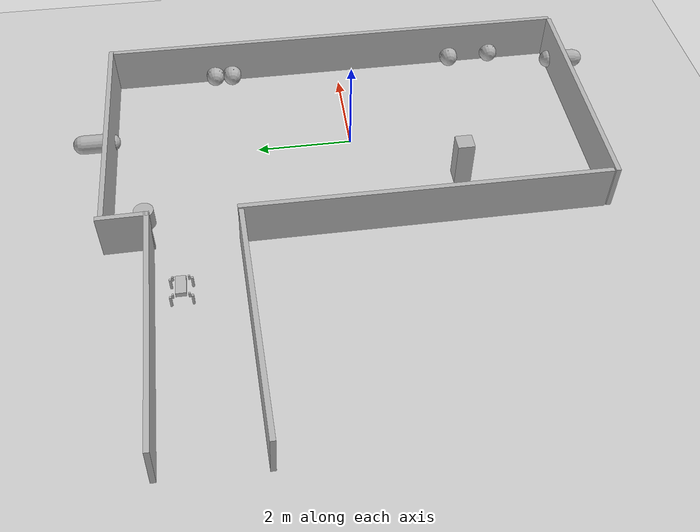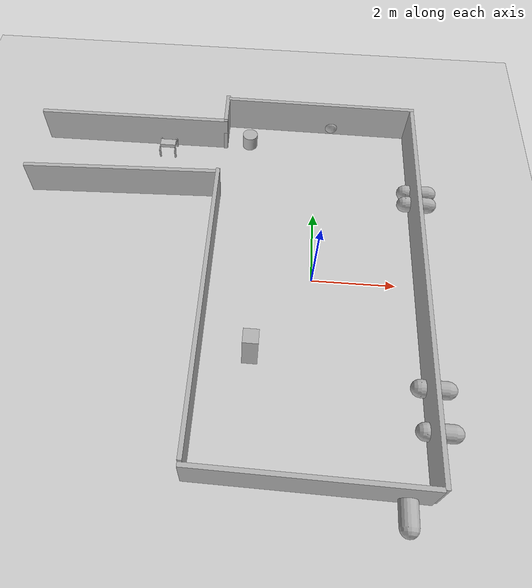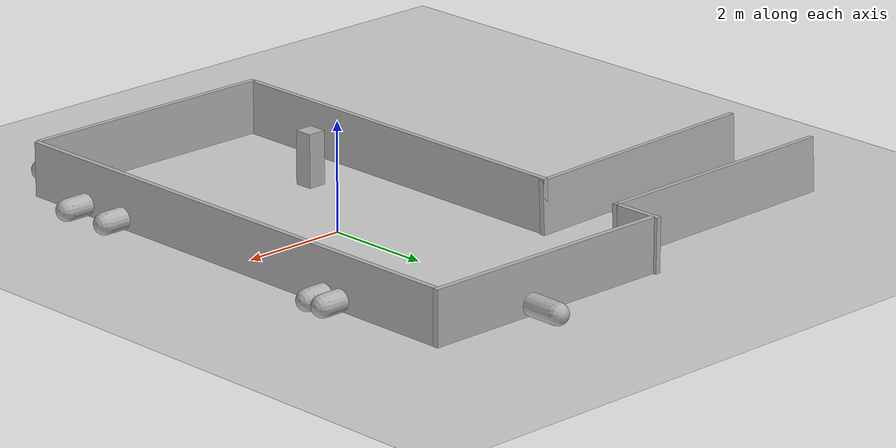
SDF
<?xml version="1.0" ?>
<sdf version='1.9'>
  <world name='quadruped_world'>
    <physics name='1ms' type='ignored'>
      <max_step_size>0.001</max_step_size>
      <real_time_factor>1</real_time_factor>
      <dart>
        <solver>
          <solver_type>pgs</solver_type>
        </solver>
      </dart>
      <real_time_update_rate>1000</real_time_update_rate>
    </physics>
    <plugin name='ignition::sim::systems::Physics' filename='ignition-gazebo-physics-system'/>
    <plugin name='ignition::sim::systems::UserCommands' filename='ignition-gazebo-user-commands-system'/>
    <plugin name='ignition::sim::systems::SceneBroadcaster' filename='ignition-gazebo-scene-broadcaster-system'/>
    <plugin name='ignition::sim::systems::Contact' filename='ignition-gazebo-contact-system'/>
    <gravity>0 0 -9.8</gravity>
    <magnetic_field>6e-06 2.3e-05 -4.2e-05</magnetic_field>
    <atmosphere type='adiabatic'/>
    <scene>
      <ambient>0.4 0.4 0.4 1</ambient>
      <background>0.7 0.7 0.7 1</background>
      <shadows>true</shadows>
    </scene>
    <model name='ground_plane'>
      <static>true</static>
      <link name='link'>
        <collision name='collision'>
          <geometry>
            <plane>
              <normal>0 0 1</normal>
              <size>100 100</size>
            </plane>
          </geometry>
          <surface>
            <friction>
              <ode>
                <mu>100</mu>
                <mu2>100</mu2>
              </ode>
            </friction>
            <bounce/>
            <contact/>
          </surface>
        </collision>
        <visual name='visual'>
          <geometry>
            <plane>
              <normal>0 0 1</normal>
              <size>100 100</size>
            </plane>
          </geometry>
          <material>
            <ambient>0.8 0.8 0.8 1</ambient>
            <diffuse>0.8 0.8 0.8 1</diffuse>
            <specular>0.8 0.8 0.8 1</specular>
          </material>
        </visual>
        <pose>0 0 0 0 -0 0</pose>
        <inertial>
          <pose>0 0 0 0 -0 0</pose>
          <mass>1</mass>
          <inertia>
            <ixx>1</ixx>
            <ixy>0</ixy>
            <ixz>0</ixz>
            <iyy>1</iyy>
            <iyz>0</iyz>
            <izz>1</izz>
          </inertia>
        </inertial>
        <enable_wind>false</enable_wind>
      </link>
      <pose>0 0 0 0 -0 0</pose>
      <self_collide>false</self_collide>
    </model>
    <model name='chai_back_wall'>
      <static>true</static>
      <pose>2.5 0 0.5 0 -0 0</pose>
      <link name='link'>
        <collision name='collision'>
          <geometry>
            <box>
              <size>0.1 10 1</size>
            </box>
          </geometry>
          <surface>
            <friction>
              <ode/>
            </friction>
            <bounce/>
            <contact/>
          </surface>
        </collision>
        <visual name='visual'>
          <geometry>
            <box>
              <size>0.1 10 1</size>
            </box>
          </geometry>
          <material>
            <ambient>0.7 0.7 0.7 1</ambient>
            <diffuse>0.7 0.7 0.7 1</diffuse>
            <specular>0.01 0.01 0.01 1</specular>
          </material>
        </visual>
        <pose>0 0 0 0 -0 0</pose>
        <inertial>
          <pose>0 0 0 0 -0 0</pose>
          <mass>1</mass>
          <inertia>
            <ixx>1</ixx>
            <ixy>0</ixy>
            <ixz>0</ixz>
            <iyy>1</iyy>
            <iyz>0</iyz>
            <izz>1</izz>
          </inertia>
        </inertial>
        <enable_wind>false</enable_wind>
      </link>
      <self_collide>false</self_collide>
    </model>
    <model name='chai_front_wall'>
      <static>true</static>
      <pose>-2.5 -1.17552 0.5 0 -0 0</pose>
      <link name='link'>
        <collision name='collision'>
          <geometry>
            <box>
              <size>0.1 7.4 1</size>
            </box>
          </geometry>
          <surface>
            <friction>
              <ode/>
            </friction>
            <bounce/>
            <contact/>
          </surface>
        </collision>
        <visual name='visual'>
          <geometry>
            <box>
              <size>0.1 7.4 1</size>
            </box>
          </geometry>
          <material>
            <ambient>0.7 0.7 0.7 1</ambient>
            <diffuse>0.7 0.7 0.7 1</diffuse>
            <specular>0.01 0.01 0.01 1</specular>
          </material>
        </visual>
        <pose>0 0 0 0 -0 0</pose>
        <inertial>
          <pose>0 0 0 0 -0 0</pose>
          <mass>1</mass>
          <inertia>
            <ixx>1</ixx>
            <ixy>0</ixy>
            <ixz>0</ixz>
            <iyy>1</iyy>
            <iyz>0</iyz>
            <izz>1</izz>
          </inertia>
        </inertial>
        <enable_wind>false</enable_wind>
      </link>
      <self_collide>false</self_collide>
    </model>
    <model name='chai_enterance_wall'>
      <static>true</static>
      <pose>-4.94552 2.38656 0.468097 0.001853 -0.043091 1.60937</pose>
      <link name='link'>
        <collision name='collision'>
          <geometry>
            <box>
              <size>0.1 5 1</size>
            </box>
          </geometry>
          <surface>
            <friction>
              <ode/>
            </friction>
            <bounce/>
            <contact/>
          </surface>
        </collision>
        <visual name='visual'>
          <geometry>
            <box>
              <size>0.1 5 1</size>
            </box>
          </geometry>
          <material>
            <ambient>0.7 0.7 0.7 1</ambient>
            <diffuse>0.7 0.7 0.7 1</diffuse>
            <specular>0.01 0.01 0.01 1</specular>
          </material>
        </visual>
        <pose>0 0 0 0 -0 0</pose>
        <inertial>
          <pose>0 0 0 0 -0 0</pose>
          <mass>1</mass>
          <inertia>
            <ixx>1</ixx>
            <ixy>0</ixy>
            <ixz>0</ixz>
            <iyy>1</iyy>
            <iyz>0</iyz>
            <izz>1</izz>
          </inertia>
        </inertial>
        <enable_wind>false</enable_wind>
      </link>
      <self_collide>false</self_collide>
    </model>
    <model name='quadruped'>
      <link name='base_link'>
        <inertial>
          <pose>0 0 0 0 0 0</pose>
          <mass>5</mass>
          <inertia><ixx>0.1</ixx><ixy>0</ixy><ixz>0</ixz><iyy>0.1</iyy><iyz>0</iyz><izz>0.1</izz></inertia>
        </inertial>
        <collision name='base_link_collision'>
          <geometry><box><size>0.4 0.2 0.1</size></box></geometry>
        </collision>
        <visual name='base_link_visual'>
          <geometry><box><size>0.4 0.2 0.1</size></box></geometry>
        </visual>
      </link>

      <!-- FL HIP -->
      <link name='FL_hip'>
        <pose>0.2 0.1 -0.02 0 0 0</pose>
        <inertial><pose>0 0.05 0 0 0 0</pose><mass>0.2</mass><inertia><ixx>0.005</ixx><ixy>0</ixy><ixz>0</ixz><iyy>0.005</iyy><iyz>0</iyz><izz>0.005</izz></inertia></inertial>
        <collision name='FL_hip_collision'><pose>0 0.05 0 0 0 0</pose><geometry><cylinder><radius>0.02</radius><length>0.1</length></cylinder></geometry><surface><friction><ode><mu>1.0</mu><mu2>1.0</mu2></ode></friction><bounce/><contact/></surface></collision>
        <visual name='FL_hip_visual'><pose>0 0.05 0 0 0 0</pose><geometry><cylinder><radius>0.02</radius><length>0.1</length></cylinder></geometry></visual>
      </link>
      <joint name='FL_hip_joint' type='revolute'>
        <parent>base_link</parent><child>FL_hip</child>
        <pose>0 0 0 0 0 0</pose>
        <axis><xyz>1 0 0</xyz><limit><lower>-0.3</lower><upper>0.3</upper><effort>1000</effort><velocity>10</velocity></limit><dynamics><damping>2.0</damping></dynamics></axis>
      </joint>

      <!-- FL KNEE -->
      <link name='FL_leg'>
        <pose>0.2 0.2 -0.04 0 0 0</pose>
        <inertial><pose>0 0 -0.125 0 0 0</pose><mass>0.5</mass><inertia><ixx>0.01</ixx><ixy>0</ixy><ixz>0</ixz><iyy>0.01</iyy><iyz>0</iyz><izz>0.01</izz></inertia></inertial>
        <collision name='FL_leg_collision'><pose>0 0 -0.125 0 0 0</pose><geometry><cylinder><radius>0.025</radius><length>0.25</length></cylinder></geometry><surface><friction><ode><mu>1.0</mu><mu2>1.0</mu2></ode></friction><bounce/><contact/></surface></collision>
        <visual name='FL_leg_visual'><pose>0 0 -0.125 0 0 0</pose><geometry><cylinder><radius>0.025</radius><length>0.25</length></cylinder></geometry></visual>
      </link>
      <joint name='FL_joint' type='revolute'>
        <parent>FL_hip</parent><child>FL_leg</child>
        <pose>0 0 0 0 0 0</pose>
        <axis><xyz>0 1 0</xyz><limit><lower>-1.57</lower><upper>1.57</upper><effort>1000</effort><velocity>10</velocity></limit><dynamics><damping>2.0</damping></dynamics></axis>
      </joint>

      <!-- FR HIP -->
      <link name='FR_hip'>
        <pose>0.2 -0.1 -0.02 0 0 0</pose>
        <inertial><pose>0 -0.05 0 0 0 0</pose><mass>0.2</mass><inertia><ixx>0.005</ixx><ixy>0</ixy><ixz>0</ixz><iyy>0.005</iyy><iyz>0</iyz><izz>0.005</izz></inertia></inertial>
        <collision name='FR_hip_collision'><pose>0 -0.05 0 0 0 0</pose><geometry><cylinder><radius>0.02</radius><length>0.1</length></cylinder></geometry><surface><friction><ode><mu>1.0</mu><mu2>1.0</mu2></ode></friction><bounce/><contact/></surface></collision>
        <visual name='FR_hip_visual'><pose>0 -0.05 0 0 0 0</pose><geometry><cylinder><radius>0.02</radius><length>0.1</length></cylinder></geometry></visual>
      </link>
      <joint name='FR_hip_joint' type='revolute'>
        <parent>base_link</parent><child>FR_hip</child>
        <pose>0 0 0 0 0 0</pose>
        <axis><xyz>1 0 0</xyz><limit><lower>-0.3</lower><upper>0.3</upper><effort>1000</effort><velocity>10</velocity></limit><dynamics><damping>2.0</damping></dynamics></axis>
      </joint>

      <!-- FR KNEE -->
      <link name='FR_leg'>
        <pose>0.2 -0.2 -0.04 0 0 0</pose>
        <inertial><pose>0 0 -0.125 0 0 0</pose><mass>0.5</mass><inertia><ixx>0.01</ixx><ixy>0</ixy><ixz>0</ixz><iyy>0.01</iyy><iyz>0</iyz><izz>0.01</izz></inertia></inertial>
        <collision name='FR_leg_collision'><pose>0 0 -0.125 0 0 0</pose><geometry><cylinder><radius>0.025</radius><length>0.25</length></cylinder></geometry><surface><friction><ode><mu>1.0</mu><mu2>1.0</mu2></ode></friction><bounce/><contact/></surface></collision>
        <visual name='FR_leg_visual'><pose>0 0 -0.125 0 0 0</pose><geometry><cylinder><radius>0.025</radius><length>0.25</length></cylinder></geometry></visual>
      </link>
      <joint name='FR_joint' type='revolute'>
        <parent>FR_hip</parent><child>FR_leg</child>
        <pose>0 0 0 0 0 0</pose>
        <axis><xyz>0 1 0</xyz><limit><lower>-1.57</lower><upper>1.57</upper><effort>1000</effort><velocity>10</velocity></limit><dynamics><damping>2.0</damping></dynamics></axis>
      </joint>

      <!-- BL HIP -->
      <link name='BL_hip'>
        <pose>-0.2 0.1 -0.02 0 0 0</pose>
        <inertial><pose>0 0.05 0 0 0 0</pose><mass>0.2</mass><inertia><ixx>0.005</ixx><ixy>0</ixy><ixz>0</ixz><iyy>0.005</iyy><iyz>0</iyz><izz>0.005</izz></inertia></inertial>
        <collision name='BL_hip_collision'><pose>0 0.05 0 0 0 0</pose><geometry><cylinder><radius>0.02</radius><length>0.1</length></cylinder></geometry><surface><friction><ode><mu>1.0</mu><mu2>1.0</mu2></ode></friction><bounce/><contact/></surface></collision>
        <visual name='BL_hip_visual'><pose>0 0.05 0 0 0 0</pose><geometry><cylinder><radius>0.02</radius><length>0.1</length></cylinder></geometry></visual>
      </link>
      <joint name='BL_hip_joint' type='revolute'>
        <parent>base_link</parent><child>BL_hip</child>
        <pose>0 0 0 0 0 0</pose>
        <axis><xyz>1 0 0</xyz><limit><lower>-0.3</lower><upper>0.3</upper><effort>1000</effort><velocity>10</velocity></limit><dynamics><damping>2.0</damping></dynamics></axis>
      </joint>

      <!-- BL KNEE -->
      <link name='BL_leg'>
        <pose>-0.2 0.2 -0.04 0 0 0</pose>
        <inertial><pose>0 0 -0.125 0 0 0</pose><mass>0.5</mass><inertia><ixx>0.01</ixx><ixy>0</ixy><ixz>0</ixz><iyy>0.01</iyy><iyz>0</iyz><izz>0.01</izz></inertia></inertial>
        <collision name='BL_leg_collision'><pose>0 0 -0.125 0 0 0</pose><geometry><cylinder><radius>0.025</radius><length>0.25</length></cylinder></geometry><surface><friction><ode><mu>1.0</mu><mu2>1.0</mu2></ode></friction><bounce/><contact/></surface></collision>
        <visual name='BL_leg_visual'><pose>0 0 -0.125 0 0 0</pose><geometry><cylinder><radius>0.025</radius><length>0.25</length></cylinder></geometry></visual>
      </link>
      <joint name='BL_joint' type='revolute'>
        <parent>BL_hip</parent><child>BL_leg</child>
        <pose>0 0 0 0 0 0</pose>
        <axis><xyz>0 1 0</xyz><limit><lower>-1.57</lower><upper>1.57</upper><effort>1000</effort><velocity>10</velocity></limit><dynamics><damping>2.0</damping></dynamics></axis>
      </joint>

      <!-- BR HIP -->
      <link name='BR_hip'>
        <pose>-0.2 -0.1 -0.02 0 0 0</pose>
        <inertial><pose>0 -0.05 0 0 0 0</pose><mass>0.2</mass><inertia><ixx>0.005</ixx><ixy>0</ixy><ixz>0</ixz><iyy>0.005</iyy><iyz>0</iyz><izz>0.005</izz></inertia></inertial>
        <collision name='BR_hip_collision'><pose>0 -0.05 0 0 0 0</pose><geometry><cylinder><radius>0.02</radius><length>0.1</length></cylinder></geometry><surface><friction><ode><mu>1.0</mu><mu2>1.0</mu2></ode></friction><bounce/><contact/></surface></collision>
        <visual name='BR_hip_visual'><pose>0 -0.05 0 0 0 0</pose><geometry><cylinder><radius>0.02</radius><length>0.1</length></cylinder></geometry></visual>
      </link>
      <joint name='BR_hip_joint' type='revolute'>
        <parent>base_link</parent><child>BR_hip</child>
        <pose>0 0 0 0 0 0</pose>
        <axis><xyz>1 0 0</xyz><limit><lower>-0.3</lower><upper>0.3</upper><effort>1000</effort><velocity>10</velocity></limit><dynamics><damping>2.0</damping></dynamics></axis>
      </joint>

      <!-- BR KNEE -->
      <link name='BR_leg'>
        <pose>-0.2 -0.2 -0.04 0 0 0</pose>
        <inertial><pose>0 0 -0.125 0 0 0</pose><mass>0.5</mass><inertia><ixx>0.01</ixx><ixy>0</ixy><ixz>0</ixz><iyy>0.01</iyy><iyz>0</iyz><izz>0.01</izz></inertia></inertial>
        <collision name='BR_leg_collision'><pose>0 0 -0.125 0 0 0</pose><geometry><cylinder><radius>0.025</radius><length>0.25</length></cylinder></geometry><surface><friction><ode><mu>1.0</mu><mu2>1.0</mu2></ode></friction><bounce/><contact/></surface></collision>
        <visual name='BR_leg_visual'><pose>0 0 -0.125 0 0 0</pose><geometry><cylinder><radius>0.025</radius><length>0.25</length></cylinder></geometry></visual>
      </link>
      <joint name='BR_joint' type='revolute'>
        <parent>BR_hip</parent><child>BR_leg</child>
        <pose>0 0 0 0 0 0</pose>
        <axis><xyz>0 1 0</xyz><limit><lower>-1.57</lower><upper>1.57</upper><effort>1000</effort><velocity>10</velocity></limit><dynamics><damping>2.0</damping></dynamics></axis>
      </joint>

      <plugin name='gz_ros2_control::GazeboSimROS2ControlPlugin' filename='gz_ros2_control-system'>
        <parameters>/home/ubuntu/quadruped_sim/leg_controllers.yaml</parameters>
      </plugin>
      <pose>-3.95646 3.65963 0.6 0 0 0</pose>
      <static>false</static>
      <self_collide>false</self_collide>
    </model>
    <model name='chai_enterance_wall_1'>
      <static>true</static>
      <pose>-4.90588 4.23355 0.506913 0.003111 -0.043019 1.58014</pose>
      <link name='link'>
        <collision name='collision'>
          <geometry>
            <box>
              <size>0.1 5 1</size>
            </box>
          </geometry>
          <surface>
            <friction>
              <ode/>
            </friction>
            <bounce/>
            <contact/>
          </surface>
        </collision>
        <visual name='visual'>
          <geometry>
            <box>
              <size>0.1 5 1</size>
            </box>
          </geometry>
          <material>
            <ambient>0.7 0.7 0.7 1</ambient>
            <diffuse>0.7 0.7 0.7 1</diffuse>
            <specular>0.01 0.01 0.01 1</specular>
          </material>
        </visual>
        <pose>0 0 0 0 -0 0</pose>
        <inertial>
          <pose>0 0 0 0 -0 0</pose>
          <mass>1</mass>
          <inertia>
            <ixx>1</ixx>
            <ixy>0</ixy>
            <ixz>0</ixz>
            <iyy>1</iyy>
            <iyz>0</iyz>
            <izz>1</izz>
          </inertia>
        </inertial>
        <enable_wind>false</enable_wind>
      </link>
      <self_collide>false</self_collide>
    </model>
    <model name='chai_front_wall_1'>
      <static>true</static>
      <pose>0.055124 5.07228 0.5 0 -0 1.56295</pose>
      <link name='link'>
        <collision name='collision'>
          <geometry>
            <box>
              <size>0.1 5 1</size>
            </box>
          </geometry>
          <surface>
            <friction>
              <ode/>
            </friction>
            <bounce/>
            <contact/>
          </surface>
        </collision>
        <visual name='visual'>
          <geometry>
            <box>
              <size>0.1 5 1</size>
            </box>
          </geometry>
          <material>
            <ambient>0.7 0.7 0.7 1</ambient>
            <diffuse>0.7 0.7 0.7 1</diffuse>
            <specular>0.01 0.01 0.01 1</specular>
          </material>
        </visual>
        <pose>0 0 0 0 -0 0</pose>
        <inertial>
          <pose>0 0 0 0 -0 0</pose>
          <mass>1</mass>
          <inertia>
            <ixx>1</ixx>
            <ixy>0</ixy>
            <ixz>0</ixz>
            <iyy>1</iyy>
            <iyz>0</iyz>
            <izz>1</izz>
          </inertia>
        </inertial>
        <enable_wind>false</enable_wind>
      </link>
      <self_collide>false</self_collide>
    </model>
    <model name='Table'>
      <static>true</static>
      <pose>-1.80173 4.39356 -0.115389 0 -0 0</pose>
      <link name='cylinder_link'>
        <inertial>
          <inertia>
            <ixx>0.14580000000000001</ixx>
            <ixy>0</ixy>
            <ixz>0</ixz>
            <iyy>0.14580000000000001</iyy>
            <iyz>0</iyz>
            <izz>0.125</izz>
          </inertia>
          <mass>1</mass>
          <pose>0 0 0 0 -0 0</pose>
        </inertial>
        <collision name='cylinder_collision'>
          <geometry>
            <cylinder>
              <radius>0.20000000000000001</radius>
              <length>1</length>
            </cylinder>
          </geometry>
          <surface>
            <friction>
              <ode/>
            </friction>
            <bounce/>
            <contact/>
          </surface>
        </collision>
        <visual name='cylinder_visual'>
          <geometry>
            <cylinder>
              <radius>0.20000000000000001</radius>
              <length>1</length>
            </cylinder>
          </geometry>
          <material>
            <ambient>0.3 0.3 0.3 1</ambient>
            <diffuse>0.7 0.7 0.7 1</diffuse>
            <specular>1 1 1 1</specular>
          </material>
        </visual>
        <pose>0 0 0 0 -0 0</pose>
        <enable_wind>false</enable_wind>
      </link>
      <static>false</static>
      <self_collide>false</self_collide>
    </model>
    <model name='chai_side_wall'>
      <static>true</static>
      <pose>-2.46541 4.70384 0.5 0 -0 -3.13049</pose>
      <link name='link'>
        <collision name='collision'>
          <geometry>
            <box>
              <size>0.1 1 1</size>
            </box>
          </geometry>
          <surface>
            <friction>
              <ode/>
            </friction>
            <bounce/>
            <contact/>
          </surface>
        </collision>
        <visual name='visual'>
          <geometry>
            <box>
              <size>0.1 1 1</size>
            </box>
          </geometry>
          <material>
            <ambient>0.7 0.7 0.7 1</ambient>
            <diffuse>0.7 0.7 0.7 1</diffuse>
            <specular>0.01 0.01 0.01 1</specular>
          </material>
        </visual>
        <pose>0 0 0 0 -0 0</pose>
        <inertial>
          <pose>0 0 0 0 -0 0</pose>
          <mass>1</mass>
          <inertia>
            <ixx>1</ixx>
            <ixy>0</ixy>
            <ixz>0</ixz>
            <iyy>1</iyy>
            <iyz>0</iyz>
            <izz>1</izz>
          </inertia>
        </inertial>
        <enable_wind>false</enable_wind>
      </link>
      <self_collide>false</self_collide>
    </model>
    <model name='chai_front_wall_1_1'>
      <static>true</static>
      <pose>-0.040513 -4.97564 0.5 0 -0 1.56295</pose>
      <link name='link'>
        <collision name='collision'>
          <geometry>
            <box>
              <size>0.1 5 1</size>
            </box>
          </geometry>
          <surface>
            <friction>
              <ode/>
            </friction>
            <bounce/>
            <contact/>
          </surface>
        </collision>
        <visual name='visual'>
          <geometry>
            <box>
              <size>0.1 5 1</size>
            </box>
          </geometry>
          <material>
            <ambient>0.7 0.7 0.7 1</ambient>
            <diffuse>0.7 0.7 0.7 1</diffuse>
            <specular>0.01 0.01 0.01 1</specular>
          </material>
        </visual>
        <pose>0 0 0 0 -0 0</pose>
        <inertial>
          <pose>0 0 0 0 -0 0</pose>
          <mass>1</mass>
          <inertia>
            <ixx>1</ixx>
            <ixy>0</ixy>
            <ixz>0</ixz>
            <iyy>1</iyy>
            <iyz>0</iyz>
            <izz>1</izz>
          </inertia>
        </inertial>
        <enable_wind>false</enable_wind>
      </link>
      <self_collide>false</self_collide>
    </model>
    <model name='Room_609'>
      <static>true</static>
      <pose>0.44042 5.42065 0.20079 1.5643 0.067274 -0.015404</pose>
      <link name='capsule_link'>
        <inertial>
          <inertia>
            <ixx>0.074153999999999998</ixx>
            <ixy>0</ixy>
            <ixz>0</ixz>
            <iyy>0.074153999999999998</iyy>
            <iyz>0</iyz>
            <izz>0.018769000000000001</izz>
          </inertia>
          <mass>1</mass>
          <pose>0 0 0 0 -0 0</pose>
        </inertial>
        <collision name='capsule_collision'>
          <geometry>
            <capsule>
              <radius>0.20000000000000001</radius>
              <length>0.59999999999999998</length>
            </capsule>
          </geometry>
          <surface>
            <friction>
              <ode/>
            </friction>
            <bounce/>
            <contact/>
          </surface>
        </collision>
        <visual name='capsule_visual'>
          <geometry>
            <capsule>
              <radius>0.20000000000000001</radius>
              <length>0.59999999999999998</length>
            </capsule>
          </geometry>
          <material>
            <ambient>0.3 0.3 0.3 1</ambient>
            <diffuse>0.7 0.7 0.7 1</diffuse>
            <specular>1 1 1 1</specular>
          </material>
        </visual>
        <pose>0 0 0 0 -0 0</pose>
        <enable_wind>false</enable_wind>
      </link>
      <static>false</static>
      <self_collide>false</self_collide>
    </model>
    <model name='Room_608_Left_Door'>
      <static>true</static>
      <pose>2.64493 2.81042 0.195057 -1.57109 -1.56193 1.5702</pose>
      <link name='capsule_link'>
        <inertial>
          <inertia>
            <ixx>0.074153999999999998</ixx>
            <ixy>0</ixy>
            <ixz>0</ixz>
            <iyy>0.074153999999999998</iyy>
            <iyz>0</iyz>
            <izz>0.018769000000000001</izz>
          </inertia>
          <mass>1</mass>
          <pose>0 0 0 0 -0 0</pose>
        </inertial>
        <collision name='capsule_collision'>
          <geometry>
            <capsule>
              <radius>0.20000000000000001</radius>
              <length>0.59999999999999998</length>
            </capsule>
          </geometry>
          <surface>
            <friction>
              <ode/>
            </friction>
            <bounce/>
            <contact/>
          </surface>
        </collision>
        <visual name='capsule_visual'>
          <geometry>
            <capsule>
              <radius>0.20000000000000001</radius>
              <length>0.59999999999999998</length>
            </capsule>
          </geometry>
          <material>
            <ambient>0.3 0.3 0.3 1</ambient>
            <diffuse>0.7 0.7 0.7 1</diffuse>
            <specular>1 1 1 1</specular>
          </material>
        </visual>
        <pose>0 0 0 0 -0 0</pose>
        <enable_wind>false</enable_wind>
      </link>
      <static>false</static>
      <self_collide>false</self_collide>
    </model>
    <model name='Room_608_Right_Door'>
      <static>true</static>
      <pose>2.62811 2.42754 0.193192 1.57135 -1.55523 -1.57048</pose>
      <link name='capsule_link'>
        <inertial>
          <inertia>
            <ixx>0.074153999999999998</ixx>
            <ixy>0</ixy>
            <ixz>0</ixz>
            <iyy>0.074153999999999998</iyy>
            <iyz>0</iyz>
            <izz>0.018769000000000001</izz>
          </inertia>
          <mass>1</mass>
          <pose>0 0 0 0 -0 0</pose>
        </inertial>
        <collision name='capsule_collision'>
          <geometry>
            <capsule>
              <radius>0.20000000000000001</radius>
              <length>0.59999999999999998</length>
            </capsule>
          </geometry>
          <surface>
            <friction>
              <ode/>
            </friction>
            <bounce/>
            <contact/>
          </surface>
        </collision>
        <visual name='capsule_visual'>
          <geometry>
            <capsule>
              <radius>0.20000000000000001</radius>
              <length>0.59999999999999998</length>
            </capsule>
          </geometry>
          <material>
            <ambient>0.3 0.3 0.3 1</ambient>
            <diffuse>0.7 0.7 0.7 1</diffuse>
            <specular>1 1 1 1</specular>
          </material>
        </visual>
        <pose>0 0 0 0 -0 0</pose>
        <enable_wind>false</enable_wind>
      </link>
      <static>false</static>
      <self_collide>false</self_collide>
    </model>
    <model name='Room_604'>
      <static>true</static>
      <pose>1.93811 -5.25655 0.217953 1.63267 -3.8e-05 7.8e-05</pose>
      <link name='capsule_link'>
        <inertial>
          <inertia>
            <ixx>0.074153999999999998</ixx>
            <ixy>0</ixy>
            <ixz>0</ixz>
            <iyy>0.074153999999999998</iyy>
            <iyz>0</iyz>
            <izz>0.018769000000000001</izz>
          </inertia>
          <mass>1</mass>
          <pose>0 0 0 0 -0 0</pose>
        </inertial>
        <collision name='capsule_collision'>
          <geometry>
            <capsule>
              <radius>0.20000000000000001</radius>
              <length>0.59999999999999998</length>
            </capsule>
          </geometry>
          <surface>
            <friction>
              <ode/>
            </friction>
            <bounce/>
            <contact/>
          </surface>
        </collision>
        <visual name='capsule_visual'>
          <geometry>
            <capsule>
              <radius>0.20000000000000001</radius>
              <length>0.59999999999999998</length>
            </capsule>
          </geometry>
          <material>
            <ambient>0.3 0.3 0.3 1</ambient>
            <diffuse>0.7 0.7 0.7 1</diffuse>
            <specular>1 1 1 1</specular>
          </material>
        </visual>
        <pose>0 0 0 0 -0 0</pose>
        <enable_wind>false</enable_wind>
      </link>
      <static>false</static>
      <self_collide>false</self_collide>
    </model>
    <model name='Room_606'>
      <static>true</static>
      <pose>2.68742 -3.6249 0.201072 -0.970533 -1.56445 0.970081</pose>
      <link name='capsule_link'>
        <inertial>
          <inertia>
            <ixx>0.074153999999999998</ixx>
            <ixy>0</ixy>
            <ixz>0</ixz>
            <iyy>0.074153999999999998</iyy>
            <iyz>0</iyz>
            <izz>0.018769000000000001</izz>
          </inertia>
          <mass>1</mass>
          <pose>0 0 0 0 -0 0</pose>
        </inertial>
        <collision name='capsule_collision'>
          <geometry>
            <capsule>
              <radius>0.20000000000000001</radius>
              <length>0.59999999999999998</length>
            </capsule>
          </geometry>
          <surface>
            <friction>
              <ode/>
            </friction>
            <bounce/>
            <contact/>
          </surface>
        </collision>
        <visual name='capsule_visual'>
          <geometry>
            <capsule>
              <radius>0.20000000000000001</radius>
              <length>0.59999999999999998</length>
            </capsule>
          </geometry>
          <material>
            <ambient>0.3 0.3 0.3 1</ambient>
            <diffuse>0.7 0.7 0.7 1</diffuse>
            <specular>1 1 1 1</specular>
          </material>
        </visual>
        <pose>0 0 0 0 -0 0</pose>
        <enable_wind>false</enable_wind>
      </link>
      <static>false</static>
      <self_collide>false</self_collide>
    </model>
    <model name='Room_607'>
      <static>true</static>
      <pose>2.64837 -2.6703 0.194446 -1.57434 -1.568 1.57171</pose>
      <link name='capsule_link'>
        <inertial>
          <inertia>
            <ixx>0.074153999999999998</ixx>
            <ixy>0</ixy>
            <ixz>0</ixz>
            <iyy>0.074153999999999998</iyy>
            <iyz>0</iyz>
            <izz>0.018769000000000001</izz>
          </inertia>
          <mass>1</mass>
          <pose>0 0 0 0 -0 0</pose>
        </inertial>
        <collision name='capsule_collision'>
          <geometry>
            <capsule>
              <radius>0.20000000000000001</radius>
              <length>0.59999999999999998</length>
            </capsule>
          </geometry>
          <surface>
            <friction>
              <ode/>
            </friction>
            <bounce/>
            <contact/>
          </surface>
        </collision>
        <visual name='capsule_visual'>
          <geometry>
            <capsule>
              <radius>0.20000000000000001</radius>
              <length>0.59999999999999998</length>
            </capsule>
          </geometry>
          <material>
            <ambient>0.3 0.3 0.3 1</ambient>
            <diffuse>0.7 0.7 0.7 1</diffuse>
            <specular>1 1 1 1</specular>
          </material>
        </visual>
        <pose>0 0 0 0 -0 0</pose>
        <enable_wind>false</enable_wind>
      </link>
      <static>false</static>
      <self_collide>false</self_collide>
    </model>
    <model name='Pillar'>
      <static>true</static>
      <pose>-1.34144 -2.14181 0.5 0 -0 0</pose>
      <link name='box_link'>
        <inertial>
          <inertia>
            <ixx>0.16666</ixx>
            <ixy>0</ixy>
            <ixz>0</ixz>
            <iyy>0.16666</iyy>
            <iyz>0</iyz>
            <izz>0.16666</izz>
          </inertia>
          <mass>1</mass>
          <pose>0 0 0 0 -0 0</pose>
        </inertial>
        <collision name='box_collision'>
          <geometry>
            <box>
              <size>0.35 0.35 1</size>
            </box>
          </geometry>
          <surface>
            <friction>
              <ode/>
            </friction>
            <bounce/>
            <contact/>
          </surface>
        </collision>
        <visual name='box_visual'>
          <geometry>
            <box>
              <size>0.35 0.35 1</size>
            </box>
          </geometry>
          <material>
            <ambient>0.3 0.3 0.3 1</ambient>
            <diffuse>0.7 0.7 0.7 1</diffuse>
            <specular>1 1 1 1</specular>
          </material>
        </visual>
        <pose>0 0 0 0 -0 0</pose>
        <enable_wind>false</enable_wind>
      </link>
      <static>false</static>
      <self_collide>false</self_collide>
    </model>
    <light name='sun' type='directional'>
      <pose>0 0 10 0 -0 0</pose>
      <cast_shadows>true</cast_shadows>
      <intensity>1</intensity>
      <direction>-0.5 0.1 -0.9</direction>
      <diffuse>0.8 0.8 0.8 1</diffuse>
      <specular>0.2 0.2 0.2 1</specular>
      <attenuation>
        <range>10</range>
        <linear>1</linear>
        <constant>1</constant>
        <quadratic>0</quadratic>
      </attenuation>
      <spot>
        <inner_angle>0</inner_angle>
        <outer_angle>0</outer_angle>
        <falloff>0</falloff>
      </spot>
    </light>
  </world>
</sdf>
